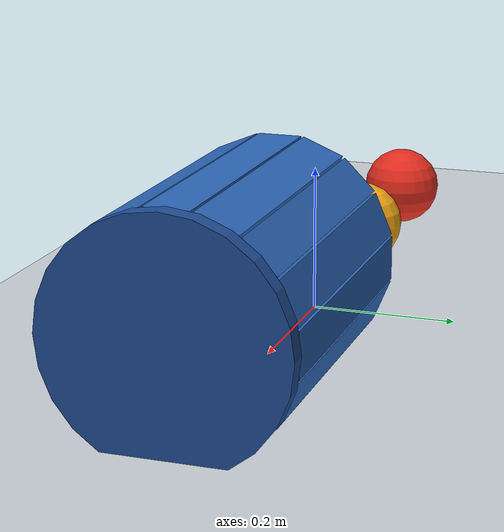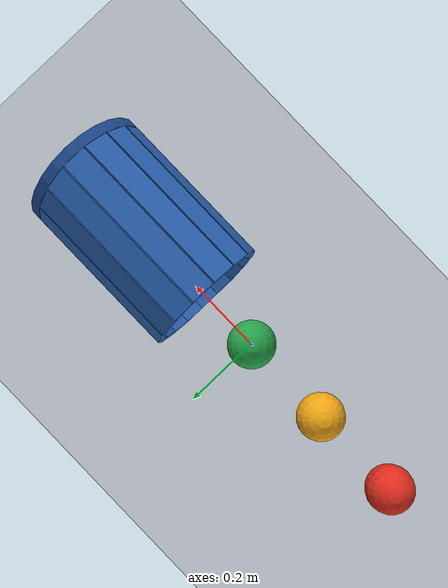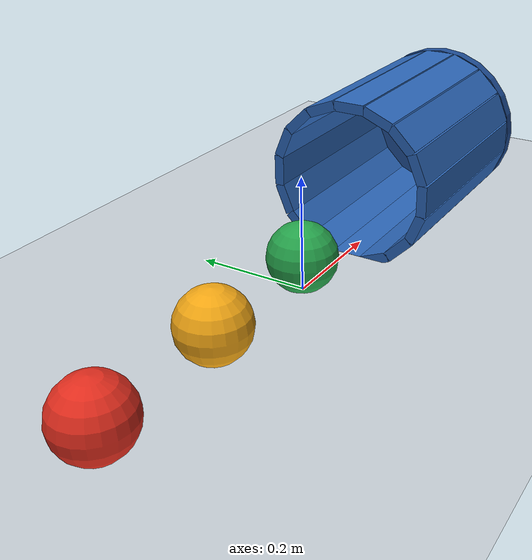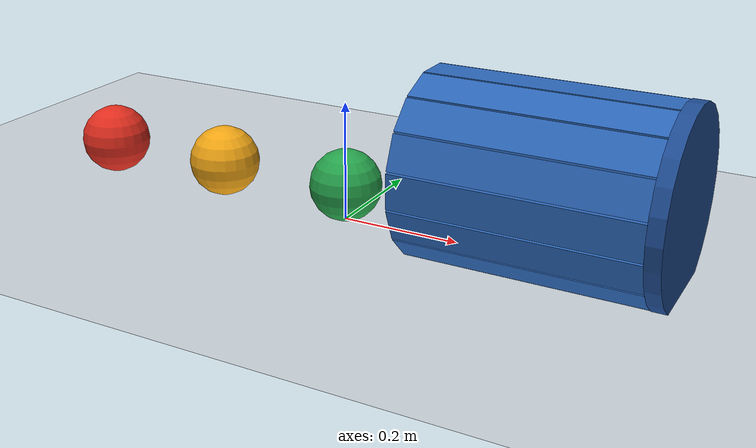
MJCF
<mujoco model="three_balls_into_a_cup">
  <compiler angle="degree" autolimits="true"/>
  <option timestep="0.002" gravity="0 0 -9.81" integrator="implicitfast" solver="Newton" iterations="80" cone="elliptic"/>
  <size njmax="1000" nconmax="200"/>
  <statistic center="0.02 0 0.12" extent="1.35"/>

  <visual>
    <global azimuth="225" elevation="-30"/>
    <headlight ambient="0.4 0.4 0.4" diffuse="0.7 0.7 0.7" specular="0.2 0.2 0.2"/>
    <rgba haze="0.85 0.9 0.95 1"/>
  </visual>

  <worldbody>
    <light name="main_light" pos="-0.5 -1 2.5" dir="0.2 0.3 -1" directional="true"/>
    <camera name="overview" pos="-1.5 -1.8 1.2" xyaxes="0.7682 -0.6402 0 0.272 0.3264 0.9053"/>

    <geom name="floor" type="plane" size="3 2 0.1" rgba="0.78 0.81 0.84 1" condim="6" friction="0.7 0.003 0.0008" solref="0.004 1" solimp="0.95 0.99 0.001"/>

    <body name="ball1" pos="-0.48 0 0.0602">
      <freejoint name="ball1_free"/>
      <geom name="ball1_sphere" type="sphere" size="0.06" mass="0.12" rgba="0.9 0.18 0.12 1" condim="6" friction="0.7 0.003 0.004" solref="0.004 1" solimp="0.95 0.99 0.001"/>
    </body>

    <body name="ball2" pos="-0.24 0 0.0602">
      <freejoint name="ball2_free"/>
      <geom name="ball2_sphere" type="sphere" size="0.06" mass="0.12" rgba="0.96 0.66 0.08 1" condim="6" friction="0.7 0.003 0.003" solref="0.004 1" solimp="0.95 0.99 0.001"/>
    </body>

    <body name="ball3" pos="0 0 0.0602">
      <freejoint name="ball3_free"/>
      <geom name="ball3_sphere" type="sphere" size="0.06" mass="0.12" rgba="0.15 0.65 0.3 1" condim="6" friction="0.7 0.003 0.0008" solref="0.004 1" solimp="0.95 0.99 0.001"/>
    </body>

    <!-- A fixed, sideways cup. Its axis is x and its mouth is at x = 0.15. -->
    <!-- The sixteen wall panels form a hollow polygonal cylindrical shell. -->
    <!-- Its lower inside surface is slightly below the floor, avoiding an entry lip. -->
    <body name="cup" pos="0.34 0 0.13">
      <geom name="cup_wall_00" type="box" pos="0 0 0.14" size="0.19 0.028 0.009" quat="1 0 0 0" rgba="0.17 0.4 0.72 1" friction="0.8 0.003 0.002"/>
      <geom name="cup_wall_01" type="box" pos="0 -0.053576 0.129343" size="0.19 0.028 0.009" quat="0.980785 0.195090 0 0" rgba="0.17 0.4 0.72 1" friction="0.8 0.003 0.002"/>
      <geom name="cup_wall_02" type="box" pos="0 -0.098995 0.098995" size="0.19 0.028 0.009" quat="0.923880 0.382683 0 0" rgba="0.17 0.4 0.72 1" friction="0.8 0.003 0.002"/>
      <geom name="cup_wall_03" type="box" pos="0 -0.129343 0.053576" size="0.19 0.028 0.009" quat="0.831470 0.555570 0 0" rgba="0.17 0.4 0.72 1" friction="0.8 0.003 0.002"/>
      <geom name="cup_wall_04" type="box" pos="0 -0.14 0" size="0.19 0.028 0.009" quat="0.707107 0.707107 0 0" rgba="0.17 0.4 0.72 1" friction="0.8 0.003 0.002"/>
      <geom name="cup_wall_05" type="box" pos="0 -0.129343 -0.053576" size="0.19 0.028 0.009" quat="0.555570 0.831470 0 0" rgba="0.17 0.4 0.72 1" friction="0.8 0.003 0.002"/>
      <geom name="cup_wall_06" type="box" pos="0 -0.098995 -0.098995" size="0.19 0.028 0.009" quat="0.382683 0.923880 0 0" rgba="0.17 0.4 0.72 1" friction="0.8 0.003 0.002"/>
      <geom name="cup_wall_07" type="box" pos="0 -0.053576 -0.129343" size="0.19 0.028 0.009" quat="0.195090 0.980785 0 0" rgba="0.17 0.4 0.72 1" friction="0.8 0.003 0.002"/>
      <geom name="cup_wall_08" type="box" pos="0 0 -0.14" size="0.19 0.028 0.009" quat="0 1 0 0" rgba="0.17 0.4 0.72 1" friction="0.8 0.003 0.002"/>
      <geom name="cup_wall_09" type="box" pos="0 0.053576 -0.129343" size="0.19 0.028 0.009" quat="-0.195090 0.980785 0 0" rgba="0.17 0.4 0.72 1" friction="0.8 0.003 0.002"/>
      <geom name="cup_wall_10" type="box" pos="0 0.098995 -0.098995" size="0.19 0.028 0.009" quat="-0.382683 0.923880 0 0" rgba="0.17 0.4 0.72 1" friction="0.8 0.003 0.002"/>
      <geom name="cup_wall_11" type="box" pos="0 0.129343 -0.053576" size="0.19 0.028 0.009" quat="-0.555570 0.831470 0 0" rgba="0.17 0.4 0.72 1" friction="0.8 0.003 0.002"/>
      <geom name="cup_wall_12" type="box" pos="0 0.14 0" size="0.19 0.028 0.009" quat="0.707107 -0.707107 0 0" rgba="0.17 0.4 0.72 1" friction="0.8 0.003 0.002"/>
      <geom name="cup_wall_13" type="box" pos="0 0.129343 0.053576" size="0.19 0.028 0.009" quat="0.831470 -0.555570 0 0" rgba="0.17 0.4 0.72 1" friction="0.8 0.003 0.002"/>
      <geom name="cup_wall_14" type="box" pos="0 0.098995 0.098995" size="0.19 0.028 0.009" quat="0.923880 -0.382683 0 0" rgba="0.17 0.4 0.72 1" friction="0.8 0.003 0.002"/>
      <geom name="cup_wall_15" type="box" pos="0 0.053576 0.129343" size="0.19 0.028 0.009" quat="0.980785 -0.195090 0 0" rgba="0.17 0.4 0.72 1" friction="0.8 0.003 0.002"/>
      <geom name="cup_bottom" type="cylinder" pos="0.202 0 0" size="0.152 0.012" quat="0.707107 0 0.707107 0" rgba="0.12 0.3 0.58 1" priority="1" condim="6" friction="0.9 0.006 0.006" solref="0.008 1" solimp="0.95 0.99 0.001"/>
    </body>
  </worldbody>

  <!-- Elastic ball-to-ball contacts transfer motion down the row. -->
  <contact>
    <pair name="ball1_ball2" geom1="ball1_sphere" geom2="ball2_sphere" condim="3" friction="0.02 0.02 0.001 0.0001 0.0001" solref="0.08 0.05" solimp="0.95 0.99 0.001"/>
    <pair name="ball2_ball3" geom1="ball2_sphere" geom2="ball3_sphere" condim="3" friction="0.02 0.02 0.001 0.0001 0.0001" solref="0.08 0.05" solimp="0.95 0.99 0.001"/>
    <pair name="ball1_ball3" geom1="ball1_sphere" geom2="ball3_sphere" condim="3" friction="0.02 0.02 0.001 0.0001 0.0001" solref="0.08 0.05" solimp="0.95 0.99 0.001"/>
  </contact>

  <keyframe>
    <key name="start" qpos="-0.48 0 0.0602 1 0 0 0 -0.24 0 0.0602 1 0 0 0 0 0 0.0602 1 0 0 0" qvel="1.1 0 0 0 18.333333 0 0 0 0 0 0 0 0 0 0 0 0 0"/>
  </keyframe>
</mujoco>
